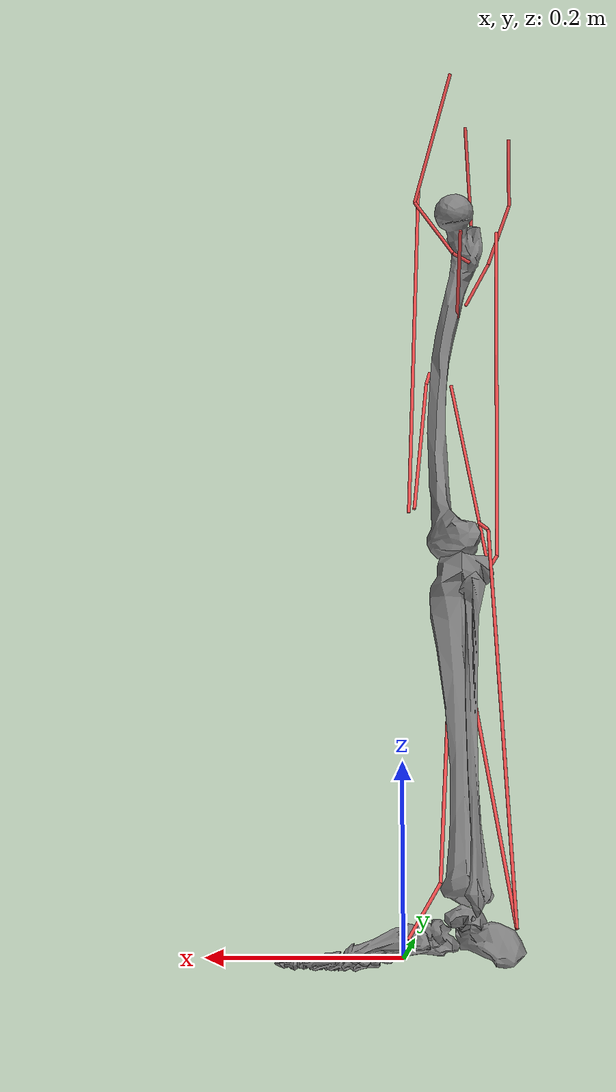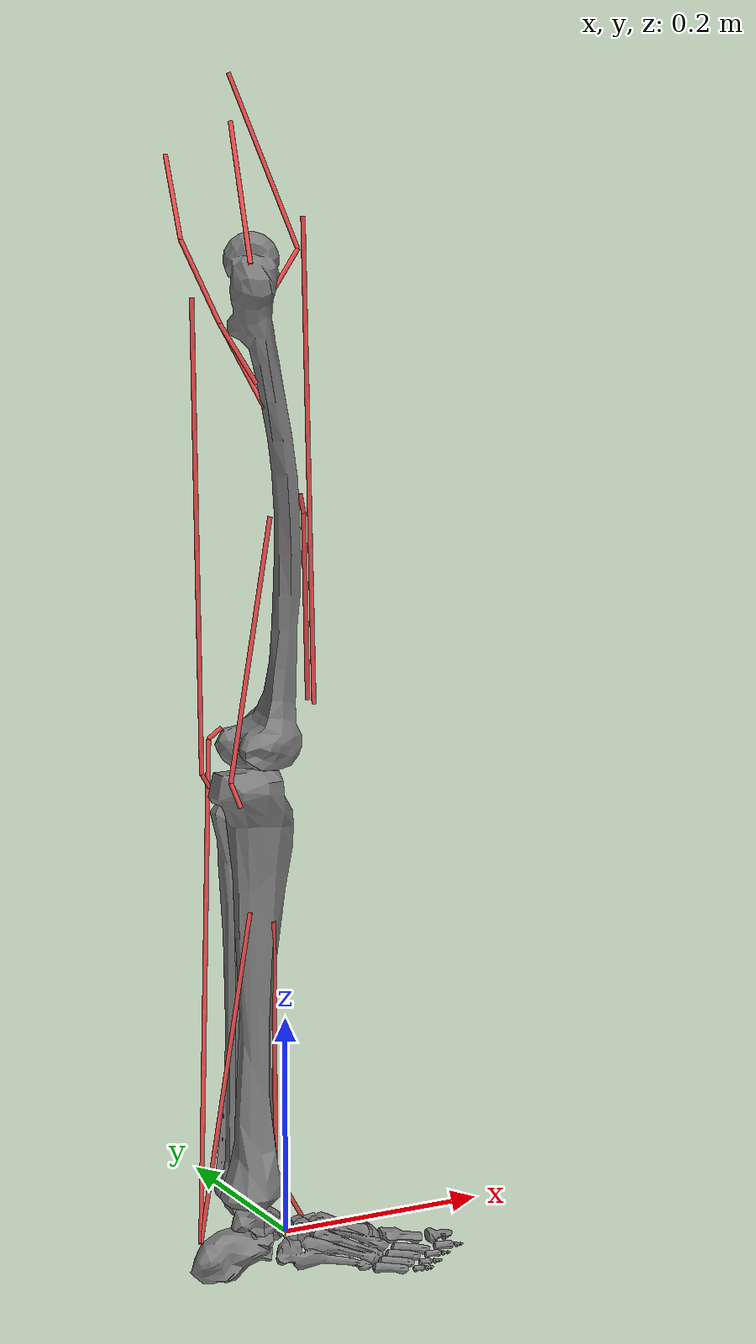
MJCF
<mujoco model="floor">
  <compiler boundmass="1e-05" boundinertia="1e-11" balanceinertia="true" coordinate="local" angle="radian" eulerseq="xyz"/>
  <option timestep="0.002" cone="elliptic" noslip_iterations="5" noslip_tolerance="0.0"/>
  <size njmax="500" nconmax="150"/>
  <visual>
    <headlight ambient="0.4 0.4 0.4" diffuse="0.8 0.8 0.8" specular="0.1 0.1 0.1"/>
    <map znear="0.01"/>
    <scale forcewidth="0.01" contactwidth="0.06" contactheight="0.01" jointwidth="0.01" framelength="0.3" framewidth="0.01"/>
  </visual>
  <default>
    <default class="/"/>
    <default class="walker/">
      <joint solimplimit="0. 0.99 0.01" stiffness="1.0" armature="0.01" damping="0.05"/>
      <equality solimp="0.000000000000000e+00 9.990000000000000e-01 1.000000000000000e-04"/>
      <tendon stiffness="40.0"/>
      <general ctrllimited="true" ctrlrange="-1. 0." dyntype="filter" dynprm="0.1"/>
      <default class="walker/wrapping">
        <geom type="cylinder" contype="0" conaffinity="0" group="3" rgba="0.5 0.5 0.5 0.2" mass="0.0"/>
      </default>
      <default class="walker/upper_joint">
        <joint stiffness="5.0" armature="0.1" damping="2.0"/>
      </default>
      <default class="walker/direct">
        <general ctrlrange="-1. 1."/>
      </default>
    </default>
  </default>
  <asset>
    <texture name="groundplane" type="2d" builtin="checker" rgb1="0.2 0.3 0.4" rgb2="0.1 0.2 0.3" mark="edge" markrgb="0.8 0.8 0.8" width="300" height="300"/>
    <material name="groundplane" class="/" texture="groundplane" texrepeat="3. 3." texuniform="true" reflectance="0.2"/>
    <mesh name="walker/pelvis" class="walker/" file="pelvis-64424d4d51a352fd673d18bcd4048c677e971954.stl"/>
    <mesh name="walker/femur" class="walker/" file="femur-79aa2c161a4ddfb8a06ba0028f0344b1a18f73f3.stl"/>
    <mesh name="walker/tibia" class="walker/" file="tibia-13b417146a0cebc7d0db45757ec7f7efebf448be.stl"/>
    <mesh name="walker/fibula" class="walker/" file="fibula-d88ee81b99806c294f5dbcc1e7476de551e38cd7.stl"/>
    <mesh name="walker/talus" class="walker/" file="talus-3471284b55698f381db0e1b5d14a3133735eb69f.stl"/>
    <mesh name="walker/foot" class="walker/" file="foot-19704e2f58e74fb59680c0586987cf67a4eb00b6.stl"/>
    <mesh name="walker/bofoot" class="walker/" file="bofoot-0d8af1519688da9648afdb2e342a739f4a918f8c.stl"/>
  </asset>
  <worldbody>
    <camera name="top_camera" class="/" fovy="10.0581471636" pos="0. 0. 10." zaxis="0. 0. 10."/>
    <camera name="side_camera" class="/" fovy="10.0581471636" pos="0. -10. 0.5." zaxis="0. -10. 0."/>
    <body name="walker/">
      <light name="walker//unnamed_light_0" class="walker/" mode="trackcom" pos="0. 0. 3."/>
      <body name="walker/ground" pos="0. 0. 0.">
        <body name="walker/pelvis" pos="0. 0. 0.94" euler="1.57079632679 0. 0.">
          <inertial pos="-0.0707 0. 0." mass="11.777" fullinertia="0.1028 0.0871 0.0579 0. 0. 0."/>
          <body name="walker/femur_r" pos="-0.0707 -0.0661 0.0835">
            <joint name="walker/hip_flexion_r" class="walker/" type="hinge" axis="0. 0. 1." limited="true" range="-2.0943951 2.0943951"/>
            <joint name="walker/hip_adduction_r" class="walker/" type="hinge" axis="1. 0. 0." limited="true" range="-2.0943951 2.0943951"/>
            <joint name="walker/hip_rotation_r" class="walker/" type="hinge" axis="0. 1. 0." limited="true" range="-2.0943951 2.0943951"/>
            <inertial pos="0. -0.17 0." mass="9.3014" fullinertia="0.1339 0.0351 0.1412 0. 0. 0."/>
            <body name="walker/tibia_r" pos="-0.005 -0.395264 0.">
              <joint name="walker/knee_angle_r" class="walker/" type="hinge" axis="0. 0. 1." limited="true" range="-2.0943951 0.17453293"/>
              <inertial pos="0. -0.1867 0." mass="3.7075" fullinertia="0.0504 0.0051 0.0511 0. 0. 0."/>
              <body name="walker/talus_r" pos="0. -0.43 0.">
                <joint name="walker/ankle_angle_r" class="walker/" type="hinge" axis="0. 0. 1." limited="true" range="-1.57079633 1.57079633"/>
                <inertial pos="0. 0. 0." mass="0.1" fullinertia="0.001 0.001 0.001 0. 0. 0."/>
                <body name="walker/calcn_r" pos="-0.04877 -0.04195 0.00792">
                  <inertial pos="0.1 0.03 0." mass="1.25" fullinertia="0.0014 0.0039 0.0041 0. 0. 0."/>
                  <body name="walker/toes_r" pos="0.1788 -0.002 0.00108">
                    <inertial pos="0.0346 0.006 -0.0175" mass="0.2166" fullinertia="0.0001 0.0002 0.0001 0. 0. 0."/>
                    <geom name="walker/bofoot" class="walker/" type="mesh" group="1" mesh="walker/bofoot"/>
                  </body>
                  <site name="walker/med_gas_r-P3" class="walker/" group="3" size="0.003" pos="0. 0.031 -0.0053"/>
                  <site name="walker/soleus_r-P2" class="walker/" group="3" size="0.003" pos="0. 0.031 -0.0053"/>
                  <site name="walker/tib_ant_r-P3" class="walker/" group="3" size="0.003" pos="0.1166 0.0178 -0.0305"/>
                  <geom name="walker/foot" class="walker/" type="mesh" group="1" mesh="walker/foot"/>
                </body>
                <geom name="walker/talus" class="walker/" type="mesh" group="1" mesh="walker/talus"/>
              </body>
              <site name="walker/semimem_r-P3" class="walker/" group="3" size="0.003" pos="-0.027 -0.04771 -0.01957"/>
              <site name="walker/bifemsh_r-P2" class="walker/" group="3" size="0.003" pos="-0.0301 -0.036 0.02943"/>
              <site name="walker/bifemsh_r-P3" class="walker/" group="3" size="0.003" pos="-0.0234 -0.0563 0.0343"/>
              <site name="walker/soleus_r-P1" class="walker/" group="3" size="0.003" pos="-0.0024 -0.1533 0.0071"/>
              <site name="walker/tib_ant_r-P1" class="walker/" group="3" size="0.003" pos="0.0179 -0.1624 0.0115"/>
              <site name="walker/tib_ant_r-P2" class="walker/" group="3" size="0.003" pos="0.0329 -0.3951 -0.0177"/>
              <site name="walker/semimem_r-P2" class="walker/" group="3" size="0.003" pos="-0.0348 -0.03519 -0.01891"/>
              <site name="walker/rect_fem_r-P3" class="walker/" group="3" size="0.003" pos="0.0617576 0.020984 0.0014"/>
              <site name="walker/vas_int_r-P4" class="walker/" group="3" size="0.003" pos="0.0554632 0.0252923 0.0018"/>
              <geom name="walker/tibia" class="walker/" type="mesh" group="1" mesh="walker/tibia"/>
              <geom name="walker/fibula" class="walker/" type="mesh" group="1" mesh="walker/fibula"/>
            </body>
            <site name="walker/glut_med2_r-P2" class="walker/" group="3" size="0.003" pos="-0.0258 -0.0058 0.0527"/>
            <site name="walker/add_mag1_r-P2" class="walker/" group="3" size="0.003" pos="-0.0045 -0.1211 0.0339"/>
            <site name="walker/bifemsh_r-P1" class="walker/" group="3" size="0.003" pos="0.005 -0.2111 0.0234"/>
            <site name="walker/glut_max2_r-P3" class="walker/" group="3" size="0.003" pos="-0.0426 -0.053 0.0293"/>
            <site name="walker/glut_max2_r-P4" class="walker/" group="3" size="0.003" pos="-0.0156 -0.1016 0.0419"/>
            <site name="walker/psoas_r-P4" class="walker/" group="3" size="0.003" pos="0.0016 -0.0507 0.0038"/>
            <site name="walker/psoas_r-P5" class="walker/" group="3" size="0.003" pos="-0.0188 -0.0597 0.0104"/>
            <site name="walker/vas_int_r-P1" class="walker/" group="3" size="0.003" pos="0.029 -0.1924 0.031"/>
            <site name="walker/vas_int_r-P2" class="walker/" group="3" size="0.003" pos="0.0335 -0.2084 0.0285"/>
            <site name="walker/med_gas_r-P1" class="walker/" group="3" size="0.003" pos="-0.019 -0.3929 -0.0235"/>
            <site name="walker/rect_fem_r-P2" class="walker/" group="3" size="0.003" pos="0.0334 -0.403 0.0019"/>
            <site name="walker/vas_int_r-P3" class="walker/" group="3" size="0.003" pos="0.0343 -0.403 0.0055"/>
            <site name="walker/med_gas_r-P2" class="walker/" group="3" size="0.003" pos="-0.03 -0.4022 -0.0258"/>
            <geom name="walker/femur" class="walker/" type="mesh" group="1" mesh="walker/femur"/>
          </body>
          <site name="walker/glut_med2_r-P1" class="walker/" group="3" size="0.003" pos="-0.0855 0.0445 0.0766"/>
          <site name="walker/add_mag1_r-P1" class="walker/" group="3" size="0.003" pos="-0.0732 -0.1174 0.0255"/>
          <site name="walker/semimem_r-P1" class="walker/" group="3" size="0.003" pos="-0.1192 -0.09747 0.07151"/>
          <site name="walker/glut_max2_r-P1" class="walker/" group="3" size="0.003" pos="-0.1349 0.0176 0.0563"/>
          <site name="walker/glut_max2_r-P2" class="walker/" group="3" size="0.003" pos="-0.1376 -0.052 0.0914"/>
          <site name="walker/psoas_r-P1" class="walker/" group="3" size="0.003" pos="-0.0647 0.0887 0.0289"/>
          <site name="walker/psoas_r-P2" class="walker/" group="3" size="0.003" pos="-0.0238 -0.057 0.0759"/>
          <site name="walker/rect_fem_r-P1" class="walker/" group="3" size="0.003" pos="-0.0295 -0.0311 0.0968"/>
        </body>
      </body>
    </body>
  </worldbody>
  <tendon>
    <spatial name="walker/abd_r" class="walker/" range="0. 0.0265" width="0.002" rgba="0.95 0.3 0.3 1.">
      <site site="walker/glut_med2_r-P1"/>
      <site site="walker/glut_med2_r-P2"/>
    </spatial>
    <spatial name="walker/add_r" class="walker/" range="0. 0.03" width="0.002" rgba="0.95 0.3 0.3 1.">
      <site site="walker/add_mag1_r-P1"/>
      <site site="walker/add_mag1_r-P2"/>
    </spatial>
    <spatial name="walker/hamstrings_r" class="walker/" range="0. 0.1745" width="0.002" rgba="0.95 0.3 0.3 1.">
      <site site="walker/semimem_r-P1"/>
      <site site="walker/semimem_r-P2"/>
      <site site="walker/semimem_r-P3"/>
    </spatial>
    <spatial name="walker/bifemsh_r" class="walker/" range="0. 0.0585" width="0.002" rgba="0.95 0.3 0.3 1.">
      <site site="walker/bifemsh_r-P1"/>
      <site site="walker/bifemsh_r-P2"/>
      <site site="walker/bifemsh_r-P3"/>
    </spatial>
    <spatial name="walker/glut_max_r" class="walker/" range="0. 0.024" width="0.002" rgba="0.95 0.3 0.3 1.">
      <site site="walker/glut_max2_r-P1"/>
      <site site="walker/glut_max2_r-P2"/>
      <site site="walker/glut_max2_r-P3"/>
      <site site="walker/glut_max2_r-P4"/>
    </spatial>
    <spatial name="walker/iliopsoas_r" class="walker/" range="0. 0.065" width="0.002" rgba="0.95 0.3 0.3 1.">
      <site site="walker/psoas_r-P1"/>
      <site site="walker/psoas_r-P2"/>
      <site site="walker/psoas_r-P4"/>
      <site site="walker/psoas_r-P5"/>
    </spatial>
    <spatial name="walker/rect_fem_r" class="walker/" range="0. 0.173" width="0.002" rgba="0.95 0.3 0.3 1.">
      <site site="walker/rect_fem_r-P1"/>
      <site site="walker/rect_fem_r-P3"/>
    </spatial>
    <spatial name="walker/vasti_r" class="walker/" range="0. 0.051" width="0.002" rgba="0.95 0.3 0.3 1.">
      <site site="walker/vas_int_r-P1"/>
      <site site="walker/vas_int_r-P2"/>
      <site site="walker/vas_int_r-P4"/>
    </spatial>
    <spatial name="walker/gastroc_r" class="walker/" range="0. 0.192" width="0.002" rgba="0.95 0.3 0.3 1.">
      <site site="walker/med_gas_r-P1"/>
      <site site="walker/med_gas_r-P2"/>
      <site site="walker/med_gas_r-P3"/>
    </spatial>
    <spatial name="walker/soleus_r" class="walker/" range="0. 0.122" width="0.002" rgba="0.95 0.3 0.3 1.">
      <site site="walker/soleus_r-P1"/>
      <site site="walker/soleus_r-P2"/>
    </spatial>
    <spatial name="walker/tib_ant_r" class="walker/" range="0. 0.119" width="0.002" rgba="0.95 0.3 0.3 1.">
      <site site="walker/tib_ant_r-P1"/>
      <site site="walker/tib_ant_r-P2"/>
      <site site="walker/tib_ant_r-P3"/>
    </spatial>
  </tendon>
  <actuator>
    <general name="walker/abd_r" class="walker/" gear="4460.290481" tendon="walker/abd_r"/>
    <general name="walker/add_r" class="walker/" gear="3931.800000000000182" tendon="walker/add_r"/>
    <general name="walker/hamstrings_r" class="walker/" gear="4105.465573999999833" tendon="walker/hamstrings_r"/>
    <general name="walker/bifemsh_r" class="walker/" gear="557.114754098359981" tendon="walker/bifemsh_r"/>
    <general name="walker/glut_max_r" class="walker/" gear="3337.583607000000029" tendon="walker/glut_max_r"/>
    <general name="walker/iliopsoas_r" class="walker/" gear="2697.344262000000072" tendon="walker/iliopsoas_r"/>
    <general name="walker/rect_fem_r" class="walker/" gear="2191.740983606559894" tendon="walker/rect_fem_r"/>
    <general name="walker/vasti_r" class="walker/" gear="9593.950820000000022" tendon="walker/vasti_r"/>
    <general name="walker/gastroc_r" class="walker/" gear="4690.573769999999968" tendon="walker/gastroc_r"/>
    <general name="walker/soleus_r" class="walker/" gear="7924.996721000000434" tendon="walker/soleus_r"/>
    <general name="walker/tib_ant_r" class="walker/" gear="2116.818162000000029" tendon="walker/tib_ant_r"/>
  </actuator>
  <sensor>
    <tendonpos name="walker/abd_r" tendon="walker/abd_r"/>
    <tendonpos name="walker/add_r" tendon="walker/add_r"/>
    <tendonpos name="walker/hamstrings_r" tendon="walker/hamstrings_r"/>
    <tendonpos name="walker/bifemsh_r" tendon="walker/bifemsh_r"/>
    <tendonpos name="walker/glut_max_r" tendon="walker/glut_max_r"/>
    <tendonpos name="walker/iliopsoas_r" tendon="walker/iliopsoas_r"/>
    <tendonpos name="walker/rect_fem_r" tendon="walker/rect_fem_r"/>
    <tendonpos name="walker/vasti_r" tendon="walker/vasti_r"/>
    <tendonpos name="walker/gastroc_r" tendon="walker/gastroc_r"/>
    <tendonpos name="walker/soleus_r" tendon="walker/soleus_r"/>
    <tendonpos name="walker/tib_ant_r" tendon="walker/tib_ant_r"/>
  </sensor>
</mujoco>
